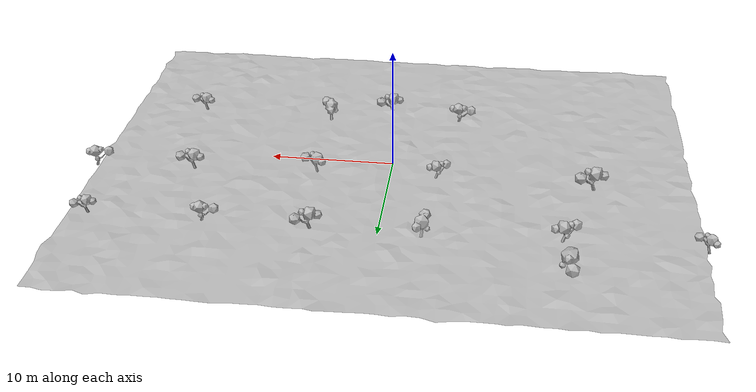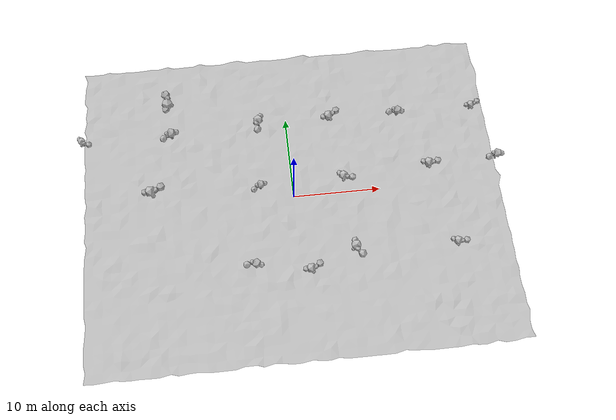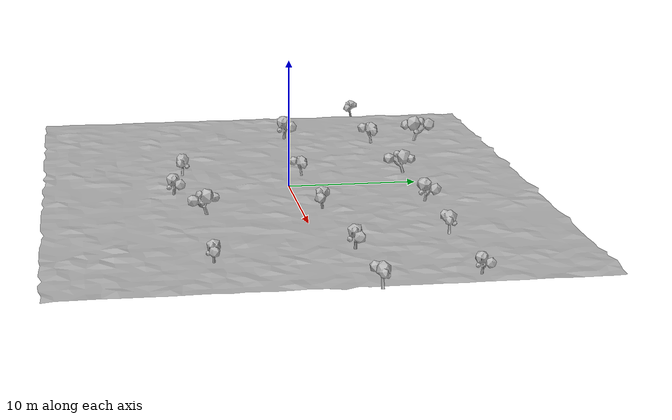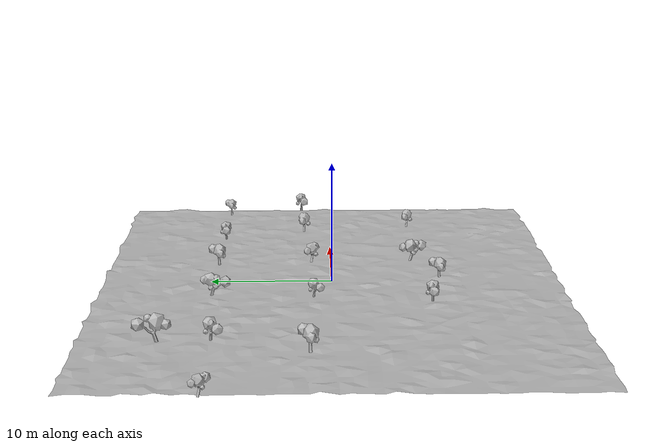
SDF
<?xml version='1.0' encoding='ASCII'?>
<sdf version='1.4'>
  <world name='procedural_orchard'>

    <spherical_coordinates>
      <surface_model>EARTH_WGS84</surface_model>
      <latitude_deg>37.335</latitude_deg>
      <longitude_deg>-121.881</longitude_deg>
      <elevation>0.0</elevation>
      <heading_deg>0</heading_deg>
    </spherical_coordinates>

    <physics type='ode'>
      <max_step_size>0.003</max_step_size>
      <real_time_factor>1.0</real_time_factor>
      <gravity>0 0 -9.8</gravity>
    </physics>
    <plugin name='gz::sim::systems::Physics' filename='libgz-sim-physics-system.so'/>
    <plugin name='gz::sim::systems::UserCommands' filename='libgz-sim-user-commands-system.so'/>
    <plugin name='gz::sim::systems::SceneBroadcaster' filename='libgz-sim-scene-broadcaster-system.so'/>
    <plugin name='gz::sim::systems::Sensors' filename='libgz-sim-sensors-system.so'>
      <render_engine>ogre2</render_engine>
    </plugin>
    <plugin name='gz::sim::systems::Imu' filename='libgz-sim-imu-system.so'/>
    <plugin name='gz::sim::systems::NavSat' filename='libgz-sim-navsat-system.so'/>
    <scene>
      <ambient>1 1 1 1</ambient>
      <background>0.3 0.7 0.9 1</background>
      <shadows>1</shadows>
      <sky><clouds><speed>12</speed></clouds></sky>
    </scene>
    <light name='sun' type='directional'>
      <cast_shadows>1</cast_shadows>
      <pose>0 0 10 0 -0 0</pose>
      <diffuse>1.0 1.0 1.0 1</diffuse>
      <specular>0.2 0.2 0.2 1</specular>
      <direction>-0.5 0.5 -1.0</direction>
    </light>

    <model name='orchard_ground'>
      <static>true</static>
      <pose>0 0 0 0 0 0</pose>
      <link name='link'>
        <collision name='col'><geometry><mesh><uri>model://orchard/orchard_world.dae</uri></mesh></geometry></collision>
        <visual name='vis'><geometry><mesh><uri>model://orchard/orchard_world.dae</uri></mesh></geometry></visual>
      </link>
    </model>

    <model name='tree_0'>
      <static>true</static>
      <pose>1.400 -9.000 0 0 0 2.642</pose>
      <link name='link'>
        <visual name='visual'>
          <geometry><mesh>
            <uri>model://orchard/orchard_tree_1.dae</uri>
            <scale>1.388 1.388 1.388</scale>
          </mesh></geometry>
        </visual>
        <collision name='trunk_collision'>
          <pose>0 0 0.5 0 0 0</pose>
          <geometry>
            <cylinder>
              <radius>0.2</radius>
              <length>1.0</length>
            </cylinder>
          </geometry>
        </collision>
      </link>
    </model>

    <model name='tree_2'>
      <static>true</static>
      <pose>-5.300 -7.900 0 0 0 5.375</pose>
      <link name='link'>
        <visual name='visual'>
          <geometry><mesh>
            <uri>model://orchard/orchard_tree_1.dae</uri>
            <scale>1.347 1.347 1.347</scale>
          </mesh></geometry>
        </visual>
        <collision name='trunk_collision'>
          <pose>0 0 0.5 0 0 0</pose>
          <geometry>
            <cylinder>
              <radius>0.2</radius>
              <length>1.0</length>
            </cylinder>
          </geometry>
        </collision>
      </link>
    </model>

    <model name='tree_3'>
      <static>true</static>
      <pose>18.000 -7.600 0 0 0 2.182</pose>
      <link name='link'>
        <visual name='visual'>
          <geometry><mesh>
            <uri>model://orchard/orchard_tree_1.dae</uri>
            <scale>1.254 1.254 1.254</scale>
          </mesh></geometry>
        </visual>
        <collision name='trunk_collision'>
          <pose>0 0 0.5 0 0 0</pose>
          <geometry>
            <cylinder>
              <radius>0.2</radius>
              <length>1.0</length>
            </cylinder>
          </geometry>
        </collision>
      </link>
    </model>

    <model name='tree_4'>
      <static>true</static>
      <pose>6.400 -7.400 0 0 0 1.155</pose>
      <link name='link'>
        <visual name='visual'>
          <geometry><mesh>
            <uri>model://orchard/orchard_tree_1.dae</uri>
            <scale>1.484 1.484 1.484</scale>
          </mesh></geometry>
        </visual>
        <collision name='trunk_collision'>
          <pose>0 0 0.5 0 0 0</pose>
          <geometry>
            <cylinder>
              <radius>0.2</radius>
              <length>1.0</length>
            </cylinder>
          </geometry>
        </collision>
      </link>
    </model>

    <model name='tree_5'>
      <static>true</static>
      <pose>-4.000 1.400 0 0 0 5.952</pose>
      <link name='link'>
        <visual name='visual'>
          <geometry><mesh>
            <uri>model://orchard/orchard_tree_1.dae</uri>
            <scale>1.199 1.199 1.199</scale>
          </mesh></geometry>
        </visual>
        <collision name='trunk_collision'>
          <pose>0 0 0.5 0 0 0</pose>
          <geometry>
            <cylinder>
              <radius>0.2</radius>
              <length>1.0</length>
            </cylinder>
          </geometry>
        </collision>
      </link>
    </model>

    <model name='tree_6'>
      <static>true</static>
      <pose>23.800 2.600 0 0 0 5.661</pose>
      <link name='link'>
        <visual name='visual'>
          <geometry><mesh>
            <uri>model://orchard/orchard_tree_1.dae</uri>
            <scale>1.314 1.314 1.314</scale>
          </mesh></geometry>
        </visual>
        <collision name='trunk_collision'>
          <pose>0 0 0.5 0 0 0</pose>
          <geometry>
            <cylinder>
              <radius>0.2</radius>
              <length>1.0</length>
            </cylinder>
          </geometry>
        </collision>
      </link>
    </model>

    <model name='tree_7'>
      <static>true</static>
      <pose>6.300 1.500 0 0 0 1.938</pose>
      <link name='link'>
        <visual name='visual'>
          <geometry><mesh>
            <uri>model://orchard/orchard_tree_1.dae</uri>
            <scale>1.336 1.336 1.336</scale>
          </mesh></geometry>
        </visual>
        <collision name='trunk_collision'>
          <pose>0 0 0.5 0 0 0</pose>
          <geometry>
            <cylinder>
              <radius>0.2</radius>
              <length>1.0</length>
            </cylinder>
          </geometry>
        </collision>
      </link>
    </model>

    <model name='tree_8'>
      <static>true</static>
      <pose>-15.800 1.900 0 0 0 2.630</pose>
      <link name='link'>
        <visual name='visual'>
          <geometry><mesh>
            <uri>model://orchard/orchard_tree_1.dae</uri>
            <scale>1.600 1.600 1.600</scale>
          </mesh></geometry>
        </visual>
        <collision name='trunk_collision'>
          <pose>0 0 0.5 0 0 0</pose>
          <geometry>
            <cylinder>
              <radius>0.2</radius>
              <length>1.0</length>
            </cylinder>
          </geometry>
        </collision>
      </link>
    </model>

    <model name='tree_9'>
      <static>true</static>
      <pose>16.400 2.300 0 0 0 2.333</pose>
      <link name='link'>
        <visual name='visual'>
          <geometry><mesh>
            <uri>model://orchard/orchard_tree_1.dae</uri>
            <scale>1.385 1.385 1.385</scale>
          </mesh></geometry>
        </visual>
        <collision name='trunk_collision'>
          <pose>0 0 0.5 0 0 0</pose>
          <geometry>
            <cylinder>
              <radius>0.2</radius>
              <length>1.0</length>
            </cylinder>
          </geometry>
        </collision>
      </link>
    </model>

    <model name='tree_10'>
      <static>true</static>
      <pose>-14.000 9.000 0 0 0 5.924</pose>
      <link name='link'>
        <visual name='visual'>
          <geometry><mesh>
            <uri>model://orchard/orchard_tree_1.dae</uri>
            <scale>1.405 1.405 1.405</scale>
          </mesh></geometry>
        </visual>
        <collision name='trunk_collision'>
          <pose>0 0 0.5 0 0 0</pose>
          <geometry>
            <cylinder>
              <radius>0.2</radius>
              <length>1.0</length>
            </cylinder>
          </geometry>
        </collision>
      </link>
    </model>

    <model name='tree_11'>
      <static>true</static>
      <pose>-23.900 9.000 0 0 0 1.712</pose>
      <link name='link'>
        <visual name='visual'>
          <geometry><mesh>
            <uri>model://orchard/orchard_tree_1.dae</uri>
            <scale>1.174 1.174 1.174</scale>
          </mesh></geometry>
        </visual>
        <collision name='trunk_collision'>
          <pose>0 0 0.5 0 0 0</pose>
          <geometry>
            <cylinder>
              <radius>0.2</radius>
              <length>1.0</length>
            </cylinder>
          </geometry>
        </collision>
      </link>
    </model>

    <model name='tree_12'>
      <static>true</static>
      <pose>13.100 9.600 0 0 0 5.441</pose>
      <link name='link'>
        <visual name='visual'>
          <geometry><mesh>
            <uri>model://orchard/orchard_tree_1.dae</uri>
            <scale>1.293 1.293 1.293</scale>
          </mesh></geometry>
        </visual>
        <collision name='trunk_collision'>
          <pose>0 0 0.5 0 0 0</pose>
          <geometry>
            <cylinder>
              <radius>0.2</radius>
              <length>1.0</length>
            </cylinder>
          </geometry>
        </collision>
      </link>
    </model>

    <model name='tree_13'>
      <static>true</static>
      <pose>22.700 9.600 0 0 0 2.626</pose>
      <link name='link'>
        <visual name='visual'>
          <geometry><mesh>
            <uri>model://orchard/orchard_tree_1.dae</uri>
            <scale>1.179 1.179 1.179</scale>
          </mesh></geometry>
        </visual>
        <collision name='trunk_collision'>
          <pose>0 0 0.5 0 0 0</pose>
          <geometry>
            <cylinder>
              <radius>0.2</radius>
              <length>1.0</length>
            </cylinder>
          </geometry>
        </collision>
      </link>
    </model>

    <model name='tree_14'>
      <static>true</static>
      <pose>5.500 9.800 0 0 0 2.770</pose>
      <link name='link'>
        <visual name='visual'>
          <geometry><mesh>
            <uri>model://orchard/orchard_tree_1.dae</uri>
            <scale>1.448 1.448 1.448</scale>
          </mesh></geometry>
        </visual>
        <collision name='trunk_collision'>
          <pose>0 0 0.5 0 0 0</pose>
          <geometry>
            <cylinder>
              <radius>0.2</radius>
              <length>1.0</length>
            </cylinder>
          </geometry>
        </collision>
      </link>
    </model>

    <model name='tree_15'>
      <static>true</static>
      <pose>-3.400 9.400 0 0 0 0.507</pose>
      <link name='link'>
        <visual name='visual'>
          <geometry><mesh>
            <uri>model://orchard/orchard_tree_1.dae</uri>
            <scale>1.489 1.489 1.489</scale>
          </mesh></geometry>
        </visual>
        <collision name='trunk_collision'>
          <pose>0 0 0.5 0 0 0</pose>
          <geometry>
            <cylinder>
              <radius>0.2</radius>
              <length>1.0</length>
            </cylinder>
          </geometry>
        </collision>
      </link>
    </model>

    <model name='tree_16'>
      <static>true</static>
      <pose>-13.900 13.500 0 0 0 3.891</pose>
      <link name='link'>
        <visual name='visual'>
          <geometry><mesh>
            <uri>model://orchard/orchard_tree_1.dae</uri>
            <scale>1.714 1.714 1.714</scale>
          </mesh></geometry>
        </visual>
        <collision name='trunk_collision'>
          <pose>0 0 0.5 0 0 0</pose>
          <geometry>
            <cylinder>
              <radius>0.2</radius>
              <length>1.0</length>
            </cylinder>
          </geometry>
        </collision>
      </link>
    </model>
  </world>
</sdf>
